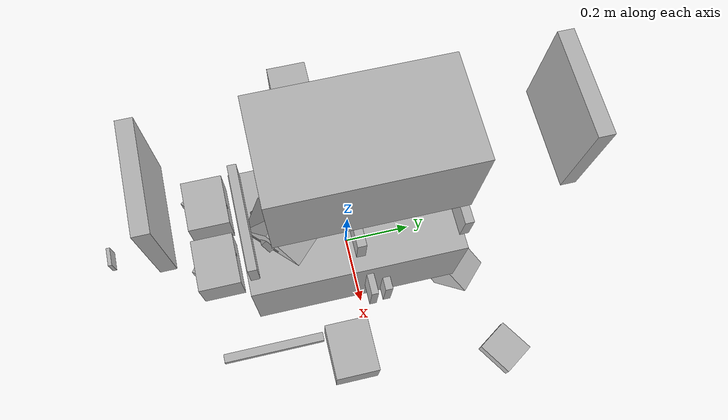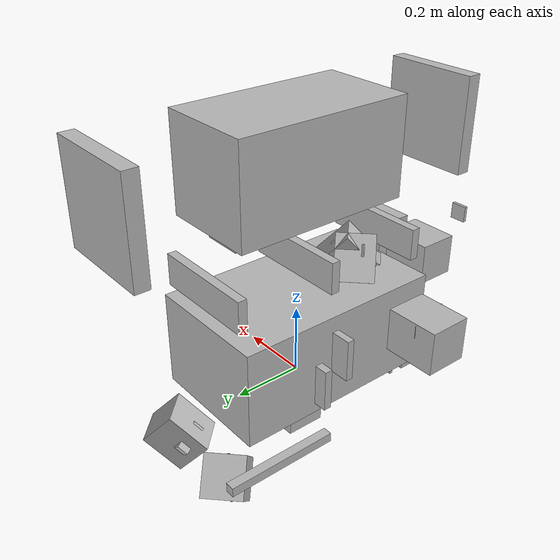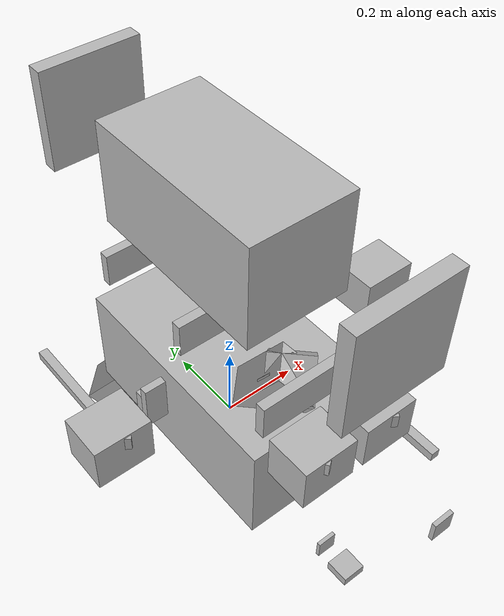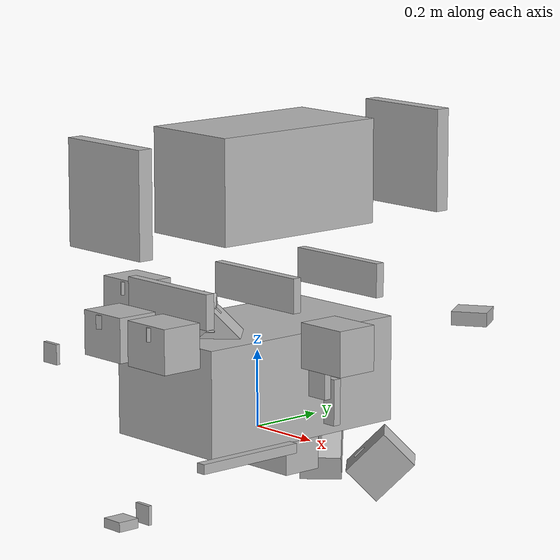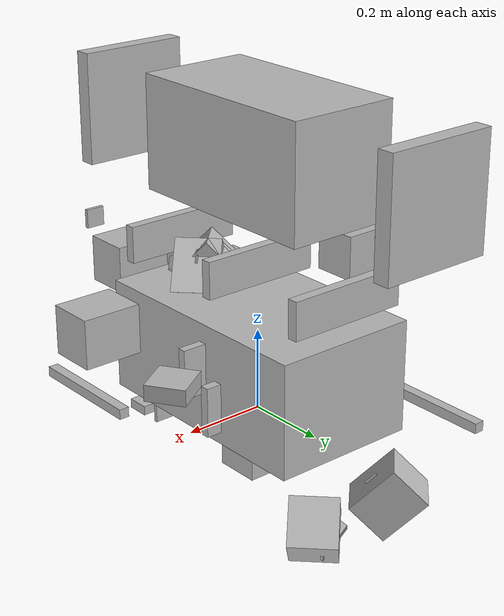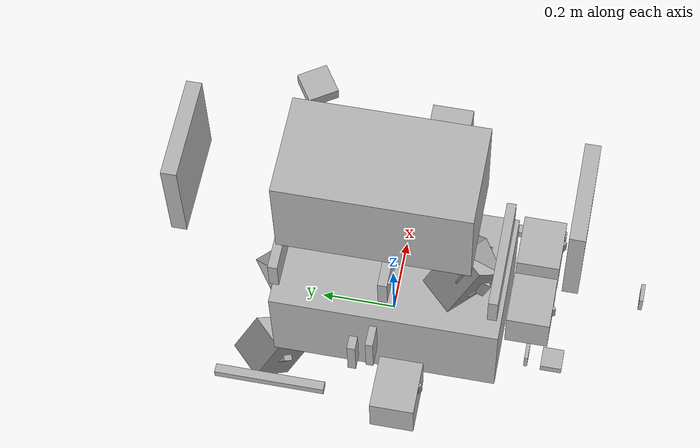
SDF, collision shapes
<sdf version="1.11">
 <model name="export_ready_assembly_v1">
  <link name="base_link">
   <inertial>
    <mass>0.0001</mass>
    <inertia><ixx>1e-09</ixx><ixy>0</ixy><ixz>0</ixz><iyy>1e-09</iyy><iyz>0</iyz><izz>1e-09</izz></inertia>
   </inertial>
  </link>
  <link name="base_link_1">
   <pose relative_to="__model__">0.0 0.0 0.012500000000000002 0.0 -0.0 1.570796326794897</pose>
   <inertial>
    <pose>1.9219946611189295e-18 3.0751914577902847e-17 1.734723475976807e-18 0.0 -0.0 -1.570796326794897</pose>
    <mass>0.19963274876480658</mass>
    <inertia>
     <ixx>3.390829679780047e-05</ixx>
     <ixy>-5.544269934278307e-19</ixy>
     <ixz>-6.139089236967274e-20</ixz>
     <iyy>0.0015141997641349501</iyy>
     <iyz>1.1510792319313615e-20</iyz>
     <izz>0.0015141997641349469</izz>
    </inertia>
   </inertial>
   <visual name="base_link_1__body1_visual">
    <geometry><mesh><scale>0.01 0.01 0.01</scale><uri>meshes/base_link_1/body1_visual.obj</uri></mesh></geometry>
   </visual>
   <collision name="base_link_1__body1_collision">
    <pose relative_to="__model__">0.0 4.884981308350689e-17 0.012500000000000002 -0.0 -1.5707963267948966 0</pose>
    <geometry><box><size>0.025 0.025 0.3</size></box></geometry>
   </collision>
  </link>
  <link name="base_structure_v3_1">
   <inertial>
    <pose>-9.268803844383131e-05 -0.004358107963915006 0.14279087376672875 0.0 -0.0 0.0</pose>
    <mass>4.766104831764232</mass>
    <inertia>
     <ixx>0.22272563316699104</ixx>
     <ixy>1.9260060529486026e-06</ixy>
     <ixz>-1.674401404712093e-06</ixz>
     <iyy>0.12062612871567982</iyy>
     <iyz>8.063758586629487e-05</iyz>
     <izz>0.28749380795747226</izz>
    </inertia>
   </inertial>
   <visual name="base_structure_v3_1__body1_visual">
    <geometry>
     <mesh><scale>0.01 0.01 0.01</scale><uri>meshes/base_structure_v3_1/body1_visual.obj</uri></mesh>
    </geometry>
   </visual>
   <collision name="base_structure_v3_1__body1_collision">
    <pose relative_to="__model__">-2.2351740014414647e-09 -0.005 0.13750000176951302 -0.0 -1.5707963267948966 0</pose>
    <geometry><box><size>0.27500000353902604 0.61 0.36000000521540604</size></box></geometry>
   </collision>
  </link>
  <link name="aft_support_1">
   <pose relative_to="__model__">-1.2172316843361841e-09 0.2875000000000002 0.012500001034329604 6.895530703326297e-09 6.123233689513694e-17 1.5707963267948966</pose>
   <inertial>
    <pose>-7.654043490575726e-19 -3.3684988808297894e-17 -1.1975023400258026e-18 6.123233647290746e-17 -6.895530703326297e-09 -1.5707963267948966</pose>
    <mass>0.18224999999999994</mass>
    <inertia>
     <ixx>2.937295320220093e-05</ixx>
     <ixy>1.841726681137266e-19</ixy>
     <ixz>9.324057541173443e-12</ixz>
     <iyy>0.001381561476601102</iyy>
     <iyz>0.0</iyz>
     <izz>0.0013815614766010988</izz>
    </inertia>
   </inertial>
   <visual name="aft_support_1__body1_visual">
    <geometry>
     <mesh><scale>0.01 0.01 0.01</scale><uri>meshes/aft_support_1/body1_visual.obj</uri></mesh>
    </geometry>
   </visual>
   <collision name="aft_support_1__body1_collision">
    <pose relative_to="__model__">-1.2948063954354438e-09 0.2875000000000002 0.0125 -0.0 -1.5707963267948966 0</pose>
    <geometry><box><size>0.025 0.025 0.3000000000172388</size></box></geometry>
   </collision>
  </link>
  <link name="aft_support_2">
   <pose relative_to="__model__">-1.2172317376268894e-09 -0.2875 0.012500001034329604 6.895530703326299e-09 -3.484460266862269e-24 1.5707963267948968</pose>
   <inertial>
    <pose>2.3930154424120435e-25 -3.368498915886532e-17 -1.4545640007087047e-18 -2.3755743563062998e-24 -6.895530703326299e-09 -1.5707963267948968</pose>
    <mass>0.18224999999999994</mass>
    <inertia>
     <ixx>2.937295320220093e-05</ixx>
     <ixy>1.0137500364916267e-19</ixy>
     <ixz>9.324057541173443e-12</ixz>
     <iyy>0.001381561476601102</iyy>
     <iyz>1.0842021724855044e-19</iyz>
     <izz>0.0013815614766011005</izz>
    </inertia>
   </inertial>
   <visual name="aft_support_2__body1_visual">
    <geometry>
     <mesh><scale>0.01 0.01 0.01</scale><uri>meshes/aft_support_2/body1_visual.obj</uri></mesh>
    </geometry>
   </visual>
   <collision name="aft_support_2__body1_collision">
    <pose relative_to="__model__">-1.294806448726149e-09 -0.2875 0.012499999999999997 -0.0 -1.5707963267948966 0</pose>
    <geometry><box><size>0.025 0.025 0.3000000000172388</size></box></geometry>
   </collision>
  </link>
  <link name="batt_hull_v1_1">
   <pose relative_to="__model__">0.0009999977648260483 0.07812500000000001 0.08500000182539201 0.0 -0.0 -1.5707963267948966</pose>
   <inertial>
    <pose>6.123220309243801e-20 2.6467820008879437e-17 0.0 0.0 -0.0 1.5707963267948966</pose>
    <mass>0.8210866559422294</mass>
    <inertia>
     <ixx>0.0025043143006237625</ixx>
     <ixy>-6.776263578034403e-20</ixy>
     <ixz>0.0</ixz>
     <iyy>0.003989112670119272</iyy>
     <iyz>0.0</iyz>
     <izz>0.003989112670119338</izz>
    </inertia>
   </inertial>
   <visual name="batt_hull_v1_1__body1_visual">
    <geometry>
     <mesh><scale>0.01 0.01 0.01</scale><uri>meshes/batt_hull_v1_1/body1_visual.obj</uri></mesh>
    </geometry>
   </visual>
   <collision name="batt_hull_v1_1__body1_collision">
    <pose relative_to="__model__">0.0009999977648260483 0.078125 0.08500000182539201 -0.0 -1.5707963267948966 0</pose>
    <geometry><box><size>0.12 0.12 0.2</size></box></geometry>
   </collision>
  </link>
  <link name="lower_mounts_v4_1">
   <pose relative_to="__model__">-0.075000002235174 0.0 0.015000001825392016 0.0 -0.0 -1.5707963267948966</pose>
   <inertial>
    <pose>-1.122951742896557e-14 6.87609628767605e-31 0.05983000486087901 0.0 -0.0 1.5707963267948966</pose>
    <mass>0.20889715202694284</mass>
    <inertia>
     <ixx>0.0014043910383185222</ixx>
     <ixy>2.1537388909222726e-22</ixy>
     <ixz>0.0</ixz>
     <iyy>0.00034258494964595036</iyy>
     <iyz>2.6515377067311625e-15</iyz>
     <izz>0.0010787257693986127</izz>
    </inertia>
   </inertial>
   <visual name="lower_mounts_v4_1__body1_visual">
    <geometry>
     <mesh><scale>0.01 0.01 0.01</scale><uri>meshes/lower_mounts_v4_1/body1_visual.obj</uri></mesh>
    </geometry>
   </visual>
   <collision name="lower_mounts_v4_1__body1_collision">
    <pose relative_to="__model__">-0.075000002235174 0.0 0.07500000182539203 -0.0 -1.5707963267948966 0</pose>
    <geometry><box><size>0.12 0.28625 0.022000000000000002</size></box></geometry>
   </collision>
  </link>
  <link name="lower_mounts_v4_2">
   <pose relative_to="__model__">0.07500000149011629 0.0 0.015000001825392016 0.0 -0.0 1.5707963267948966</pose>
   <inertial>
    <pose>-1.122951742896557e-14 -1.3877787807815144e-17 0.05983000486087901 0.0 -0.0 -1.5707963267948966</pose>
    <mass>0.20889715202694284</mass>
    <inertia>
     <ixx>0.0014043910383185222</ixx>
     <ixy>-1.2981836889172902e-19</ixy>
     <ixz>0.0</ixz>
     <iyy>0.00034258494964595036</iyy>
     <iyz>-2.6515377067311625e-15</iyz>
     <izz>0.001078725769398613</izz>
    </inertia>
   </inertial>
   <visual name="lower_mounts_v4_2__body1_visual">
    <geometry>
     <mesh><scale>0.01 0.01 0.01</scale><uri>meshes/lower_mounts_v4_2/body1_visual.obj</uri></mesh>
    </geometry>
   </visual>
   <collision name="lower_mounts_v4_2__body1_collision">
    <pose relative_to="__model__">0.0750000014901163 0.0 0.07500000182539203 -0.0 -1.5707963267948966 0</pose>
    <geometry><box><size>0.12 0.28625 0.02200000000000001</size></box></geometry>
   </collision>
  </link>
  <link name="batt_hull_2_1">
   <pose relative_to="__model__">0.0009999977648260483 -0.07812500000000003 0.08500000182539201 0.0 -0.0 -1.5707963267948966</pose>
   <inertial>
    <pose>6.123220309243801e-20 2.6441246008413177e-17 0.0 0.0 -0.0 1.5707963267948966</pose>
    <mass>0.8210866559422294</mass>
    <inertia>
     <ixx>0.0025043143006237625</ixx>
     <ixy>-9.486769009248164e-20</ixy>
     <ixz>0.0</ixz>
     <iyy>0.003989112670119272</iyy>
     <iyz>1.734723475976807e-18</iyz>
     <izz>0.00398911267011934</izz>
    </inertia>
   </inertial>
   <visual name="batt_hull_2_1__body1_visual">
    <geometry>
     <mesh><scale>0.01 0.01 0.01</scale><uri>meshes/batt_hull_2_1/body1_visual.obj</uri></mesh>
    </geometry>
   </visual>
   <collision name="batt_hull_2_1__body1_collision">
    <pose relative_to="__model__">0.0009999977648260483 -0.07812500000000004 0.08500000182539201 -0.0 -1.5707963267948966 0</pose>
    <geometry><box><size>0.12 0.12 0.2</size></box></geometry>
   </collision>
  </link>
  <link name="thruster_enclosure_v5_1">
   <pose relative_to="__model__">0.1021783004863702 -0.20407169914110088 0.075000000858279 -1.5707963267948966 -0.0 2.356194490192345</pose>
   <inertial>
    <pose>-0.00016404096371552097 -0.01689093543790808 0.010727722238094154 -1.5707963267948966 0.7853981633974484 -3.141592653589793</pose>
    <mass>0.16043165212635116</mass>
    <inertia>
     <ixx>0.000362763463563549</ixx>
     <ixy>6.570424986099797e-05</ixy>
     <ixz>-6.255743962602393e-06</ixz>
     <iyy>0.00036315916999338964</iyy>
     <iyz>-6.101982790084233e-06</iyz>
     <izz>0.00028918540189159375</izz>
    </inertia>
   </inertial>
   <visual name="thruster_enclosure_v5_1__body1_visual">
    <geometry>
     <mesh><scale>0.01 0.01 0.01</scale><uri>meshes/thruster_enclosure_v5_1/body1_visual.obj</uri></mesh>
    </geometry>
   </visual>
   <collision name="thruster_enclosure_v5_1__body1_collision">
    <pose relative_to="__model__">0.09705177645678667 -0.20919822343306332 0.07875000091112346 -0.7853981627305272 -1.5707963267948966 0</pose>
    <geometry><box><size>0.1124999998596319 0.13999999998249063 0.11450000001676784</size></box></geometry>
   </collision>
  </link>
  <link name="thruster_enclosure_v5_2">
   <pose relative_to="__model__">-0.10217830123142801 -0.20407169914110093 0.075000000974185 -1.5707963267948968 2.4789634154088394e-16 -2.356194490192345</pose>
   <inertial>
    <pose>-0.0001640409637155222 -0.016890935437908056 0.010727722238094154 -1.5707963267948968 -0.7853981633974484 3.141592653589793</pose>
    <mass>0.16043165212635116</mass>
    <inertia>
     <ixx>0.00036315916999339094</ixx>
     <ixy>-6.570424986099841e-05</ixy>
     <ixz>6.101982790084233e-06</ixz>
     <iyy>0.00036276346356354724</iyy>
     <iyz>-6.2557439626030435e-06</iyz>
     <izz>0.0002891854018915955</izz>
    </inertia>
   </inertial>
   <visual name="thruster_enclosure_v5_2__body1_visual">
    <geometry>
     <mesh><scale>0.01 0.01 0.01</scale><uri>meshes/thruster_enclosure_v5_2/body1_visual.obj</uri></mesh>
    </geometry>
   </visual>
   <collision name="thruster_enclosure_v5_2__body1_collision">
    <pose relative_to="__model__">-0.09705177718981908 -0.20919822342103792 0.07875000104354336 -0.7853981627305272 -1.5707963267948966 0</pose>
    <geometry><box><size>0.1124999998926597 0.11450000001676783 0.14000000001750937</size></box></geometry>
   </collision>
  </link>
  <link name="thruster_enclosure_v5_3">
   <pose relative_to="__model__">-0.10217830123142782 0.20407169914110093 0.07499999871727896 -1.5707963267948946 -2.2479664065167712e-15 -0.7853981633974462</pose>
   <inertial>
    <pose>-0.00016404096371550435 -0.016890935437908056 0.01072772223809412 1.5707963267948937 -0.7853981633974462 4.307600190799412e-15</pose>
    <mass>0.16043165212635116</mass>
    <inertia>
     <ixx>0.00036276346356354724</ixx>
     <ixy>6.57042498609971e-05</ixy>
     <ixz>6.255743962602393e-06</ixz>
     <iyy>0.0003631591699933892</iyy>
     <iyz>6.101982790084233e-06</iyz>
     <izz>0.00028918540189159375</izz>
    </inertia>
   </inertial>
   <visual name="thruster_enclosure_v5_3__body1_visual">
    <geometry>
     <mesh><scale>0.01 0.01 0.01</scale><uri>meshes/thruster_enclosure_v5_3/body1_visual.obj</uri></mesh>
    </geometry>
   </visual>
   <collision name="thruster_enclosure_v5_3__body1_collision">
    <pose relative_to="__model__">-0.09705177720184448 0.20919822343306355 0.07874999877012344 -0.7853981627305293 -1.5707963267948966 0</pose>
    <geometry><box><size>0.11249999985963187 0.13999999998249063 0.1145000000167678</size></box></geometry>
   </collision>
  </link>
  <link name="thruster_enclosure_v5_4">
   <pose relative_to="__model__">0.10217830048637012 0.20407169914110093 0.07499999871727905 -1.570796326794896 -1.835142521286212e-15 0.7853981633974477</pose>
   <inertial>
    <pose>-0.00016404096371555902 -0.016890935437908056 0.010727722238094116 1.5707963267948957 0.7853981633974477 1.1077763665537512e-15</pose>
    <mass>0.16043165212635116</mass>
    <inertia>
     <ixx>0.00036315916999339094</ixx>
     <ixy>-6.57042498609971e-05</ixy>
     <ixz>-6.101982790083799e-06</ixz>
     <iyy>0.0003627634635635468</iyy>
     <iyz>6.255743962602176e-06</iyz>
     <izz>0.0002891854018915955</izz>
    </inertia>
   </inertial>
   <visual name="thruster_enclosure_v5_4__body1_visual">
    <geometry>
     <mesh><scale>0.01 0.01 0.01</scale><uri>meshes/thruster_enclosure_v5_4/body1_visual.obj</uri></mesh>
    </geometry>
   </visual>
   <collision name="thruster_enclosure_v5_4__body1_collision">
    <pose relative_to="__model__">0.09705177644476119 0.20919822342103797 0.07874999878663741 -0.7853981627305268 -1.5707963267948966 0</pose>
    <geometry><box><size>0.11249999989265967 0.1145000000167678 0.14000000001750934</size></box></geometry>
   </collision>
  </link>
  <link name="main_hull_mounts_v2_1">
   <pose relative_to="__model__">-1.8652000832730663e-10 0.0 0.16000000159752886 0.0 -0.0 0.0</pose>
   <inertial>
    <pose>0.0 0.0 0.03393215424434062 0.0 -0.0 0.0</pose>
    <mass>0.6243657270662313</mass>
    <inertia>
     <ixx>0.0003796879474730411</ixx>
     <ixy>-2.592059900052845e-19</ixy>
     <ixz>5.184119841300774e-19</ixz>
     <iyy>0.006653280946691913</iyy>
     <iyz>-3.2400748750660565e-20</iyz>
     <izz>0.006338631095788273</izz>
    </inertia>
   </inertial>
   <visual name="main_hull_mounts_v2_1__body1_visual">
    <geometry>
     <mesh><scale>0.01 0.01 0.01</scale><uri>meshes/main_hull_mounts_v2_1/body1_visual.obj</uri></mesh>
    </geometry>
   </visual>
   <collision name="main_hull_mounts_v2_1__body1_collision">
    <pose relative_to="__model__">-1.8652000832730663e-10 0.0 0.20500000159752887 -0.0 -1.5707963267948966 0</pose>
    <geometry><box><size>0.09 0.025 0.3</size></box></geometry>
   </collision>
  </link>
  <link name="main_hull_mounts_v2_2">
   <pose relative_to="__model__">-1.863496549410039e-10 -0.14375 0.16000000182539204 0.0 -0.0 6.123233995736766e-17</pose>
   <inertial>
    <pose>-3.656618355476227e-27 1.1410625422285708e-26 0.033932154244340595 0.0 -0.0 -6.123233995736766e-17</pose>
    <mass>0.6243657270662313</mass>
    <inertia>
     <ixx>0.00037968794747305495</ixx>
     <ixy>-6.433527753571591e-19</ixy>
     <ixz>5.184119841300774e-19</ixz>
     <iyy>0.006653280946691924</iyy>
     <iyz>3.469446951953614e-18</iyz>
     <izz>0.006338631095788276</izz>
    </inertia>
   </inertial>
   <visual name="main_hull_mounts_v2_2__body1_visual">
    <geometry>
     <mesh><scale>0.01 0.01 0.01</scale><uri>meshes/main_hull_mounts_v2_2/body1_visual.obj</uri></mesh>
    </geometry>
   </visual>
   <collision name="main_hull_mounts_v2_2__body1_collision">
    <pose relative_to="__model__">-1.8634965570640816e-10 -0.14375 0.20500000182539202 -0.0 -1.5707963267948966 0</pose>
    <geometry><box><size>0.09 0.025 0.3</size></box></geometry>
   </collision>
  </link>
  <link name="main_hull_mounts_v2_3">
   <pose relative_to="__model__">-1.86349638708244e-10 0.14375000000000002 0.16000000182539204 -7.251365716049723e-33 -1.1842378914636296e-16 6.123233995736766e-17</pose>
   <inertial>
    <pose>2.2362970986363366e-26 1.1410623268097308e-26 0.033932154244340595 0.0 1.1842378914636296e-16 -6.123233995736766e-17</pose>
    <mass>0.6243657270662313</mass>
    <inertia>
     <ixx>0.00037968794747305495</ixx>
     <ixy>-6.433527656636363e-19</ixy>
     <ixz>-1.8726864358779919e-19</ixz>
     <iyy>0.006653280946691924</iyy>
     <iyz>0.0</iyz>
     <izz>0.006338631095788274</izz>
    </inertia>
   </inertial>
   <visual name="main_hull_mounts_v2_3__body1_visual">
    <geometry>
     <mesh><scale>0.01 0.01 0.01</scale><uri>meshes/main_hull_mounts_v2_3/body1_visual.obj</uri></mesh>
    </geometry>
   </visual>
   <collision name="main_hull_mounts_v2_3__body1_collision">
    <pose relative_to="__model__">-1.8634965570640816e-10 0.14375000000000004 0.20500000182539202 -0.0 -1.5707963267948966 0</pose>
    <geometry><box><size>0.09 0.02499999999999998 0.3</size></box></geometry>
   </collision>
  </link>
  <link name="main_hull_v2_1">
   <pose relative_to="__model__">-1.8652000832730663e-10 0.0125 0.32500000159752884 0.0 -0.0 0.0</pose>
   <inertial>
    <mass>7.1498721804886785</mass>
    <inertia>
     <ixx>0.20727181539895523</ixx>
     <ixy>2.7706846593151522e-17</ixy>
     <ixz>1.0339757656912846e-25</ixz>
     <iyy>0.11663228994421992</iyy>
     <iyz>2.0816681711721685e-17</iyz>
     <izz>0.20727181539895856</izz>
    </inertia>
   </inertial>
   <visual name="main_hull_v2_1__body1_visual">
    <geometry>
     <mesh><scale>0.01 0.01 0.01</scale><uri>meshes/main_hull_v2_1/body1_visual.obj</uri></mesh>
    </geometry>
   </visual>
   <collision name="main_hull_v2_1__body1_collision">
    <pose relative_to="__model__">-1.8652000832730663e-10 0.0125 0.32500000159752884 -0.0 -1.5707963267948966 0</pose>
    <geometry><box><size>0.27 0.5 0.27</size></box></geometry>
   </collision>
  </link>
  <link name="secondary_hull_endcaps_v1_1">
   <pose relative_to="__model__">-0.09900000223517395 -0.07812500000000004 0.08500000182539201 0.0 -0.0 -1.5707963267948966</pose>
   <inertial>
    <pose>-6.117211279491137e-18 -0.0009016393442622997 0.0 0.0 -0.0 1.5707963267948966</pose>
    <mass>0.2730829414132927</mass>
    <inertia>
     <ixx>0.00042999371348764574</ixx>
     <ixy>0.0</ixy>
     <ixz>0.0</ixz>
     <iyy>0.000223877617722636</iyy>
     <iyz>-2.168404344971009e-19</iyz>
     <izz>0.00022387761772264727</izz>
    </inertia>
   </inertial>
   <visual name="secondary_hull_endcaps_v1_1__body1_visual">
    <geometry>
     <mesh><scale>0.01 0.01 0.01</scale><uri>meshes/secondary_hull_endcaps_v1_1/body1_visual.obj</uri></mesh>
    </geometry>
   </visual>
   <collision name="secondary_hull_endcaps_v1_1__body1_collision">
    <pose relative_to="__model__">-0.09900000223517395 -0.07812500000000004 0.08500000182539201 -0.0 -1.5707963267948966 0</pose>
    <geometry><box><size>0.12 0.12 0.02</size></box></geometry>
   </collision>
  </link>
  <link name="secondary_hull_endcaps_v1_2">
   <pose relative_to="__model__">0.10099999776482604 0.078125 0.08500000182539201 0.0 1.2246467991473532e-16 1.5707963267948968</pose>
   <inertial>
    <pose>9.590445319049415e-19 -0.0009016393442622937 -4.310234689475762e-18 1.2246467991473532e-16 1.9693822555628533e-32 -1.5707963267948968</pose>
    <mass>0.2730829414132927</mass>
    <inertia>
     <ixx>0.00042999371348764574</ixx>
     <ixy>4.336808689942018e-19</ixy>
     <ixz>0.0</ixz>
     <iyy>0.000223877617722636</iyy>
     <iyz>0.0</iyz>
     <izz>0.00022387761772264727</izz>
    </inertia>
   </inertial>
   <visual name="secondary_hull_endcaps_v1_2__body1_visual">
    <geometry>
     <mesh><scale>0.01 0.01 0.01</scale><uri>meshes/secondary_hull_endcaps_v1_2/body1_visual.obj</uri></mesh>
    </geometry>
   </visual>
   <collision name="secondary_hull_endcaps_v1_2__body1_collision">
    <pose relative_to="__model__">0.10099999776482604 0.078125 0.08500000182539201 -0.0 -1.5707963267948966 0</pose>
    <geometry><box><size>0.12 0.12 0.02</size></box></geometry>
   </collision>
  </link>
  <link name="secondary_hull_endcaps_v1_3">
   <pose relative_to="__model__">-0.09900000223517395 0.078125 0.08500000182539201 0.0 -0.0 -1.5707963267948966</pose>
   <inertial>
    <pose>-6.117211279491137e-18 -0.0009016393442622902 0.0 0.0 -0.0 1.5707963267948966</pose>
    <mass>0.2730829414132927</mass>
    <inertia>
     <ixx>0.00042999371348764574</ixx>
     <ixy>0.0</ixy>
     <ixz>0.0</ixz>
     <iyy>0.000223877617722636</iyy>
     <iyz>0.0</iyz>
     <izz>0.00022387761772264727</izz>
    </inertia>
   </inertial>
   <visual name="secondary_hull_endcaps_v1_3__body1_visual">
    <geometry>
     <mesh><scale>0.01 0.01 0.01</scale><uri>meshes/secondary_hull_endcaps_v1_3/body1_visual.obj</uri></mesh>
    </geometry>
   </visual>
   <collision name="secondary_hull_endcaps_v1_3__body1_collision">
    <pose relative_to="__model__">-0.09900000223517395 0.078125 0.08500000182539201 -0.0 -1.5707963267948966 0</pose>
    <geometry><box><size>0.12 0.12 0.02</size></box></geometry>
   </collision>
  </link>
  <link name="secondary_hull_endcaps_v1_4">
   <pose relative_to="__model__">0.10099999776482604 -0.07812500000000001 0.08500000182539201 0.0 1.2246467991473532e-16 1.5707963267948968</pose>
   <inertial>
    <pose>9.590445319049415e-19 -0.0009016393442622963 4.3102346894757556e-18 1.2246467991473532e-16 1.9693822555628533e-32 -1.5707963267948968</pose>
    <mass>0.2730829414132927</mass>
    <inertia>
     <ixx>0.0004299937134876453</ixx>
     <ixy>0.0</ixy>
     <ixz>0.0</ixz>
     <iyy>0.000223877617722636</iyy>
     <iyz>2.168404344971009e-19</iyz>
     <izz>0.000223877617722649</izz>
    </inertia>
   </inertial>
   <visual name="secondary_hull_endcaps_v1_4__body1_visual">
    <geometry>
     <mesh><scale>0.01 0.01 0.01</scale><uri>meshes/secondary_hull_endcaps_v1_4/body1_visual.obj</uri></mesh>
    </geometry>
   </visual>
   <collision name="secondary_hull_endcaps_v1_4__body1_collision">
    <pose relative_to="__model__">0.10099999776482604 -0.07812500000000001 0.08500000182539201 -0.0 -1.5707963267948966 0</pose>
    <geometry><box><size>0.12 0.12 0.02</size></box></geometry>
   </collision>
  </link>
  <link name="thruster_enclosure_v5_5">
   <pose relative_to="__model__">0.23500000037252902 -0.14999999999999722 0.14000000136904406 -3.11100584993068e-30 -6.123233995736773e-17 -1.570796326794846</pose>
   <inertial>
    <pose>-0.00016404096371551034 -0.016890935437908 0.010727722238094114 6.123233995736773e-17 -7.297603015109787e-33 1.570796326794846</pose>
    <mass>0.16043165212635116</mass>
    <inertia>
     <ixx>0.00028918540189159115</ixx>
     <ixy>1.0872556777119513e-07</ixy>
     <ixz>-8.73823238687569e-06</ixz>
     <iyy>0.000297257066917472</iyy>
     <iyz>1.978532149214153e-07</iyz>
     <izz>0.00042866556663946447</izz>
    </inertia>
   </inertial>
   <visual name="thruster_enclosure_v5_5__body1_visual">
    <geometry>
     <mesh><scale>0.01 0.01 0.01</scale><uri>meshes/thruster_enclosure_v5_5/body1_visual.obj</uri></mesh>
    </geometry>
   </visual>
   <collision name="thruster_enclosure_v5_5__body1_collision">
    <pose relative_to="__model__">0.23125000037252888 -0.15000000000000013 0.14725000136904406 -0.0 -1.5707963267948966 0</pose>
    <geometry><box><size>0.11449999999999999 0.14000000000000024 0.11250000000000025</size></box></geometry>
   </collision>
  </link>
  <link name="thruster_enclosure_v5_6">
   <pose relative_to="__model__">0.23500000037252883 0.1500000000000028 0.14000000136904403 -3.109200089911257e-30 -6.123233995736772e-17 -1.570796326794846</pose>
   <inertial>
    <pose>-0.00016404096371551034 -0.016890935437908004 0.010727722238094132 6.123233995736772e-17 -5.49184299568759e-33 1.570796326794846</pose>
    <mass>0.16043165212635116</mass>
    <inertia>
     <ixx>0.000289185401891592</ixx>
     <ixy>1.0872556777032777e-07</ixy>
     <ixz>-8.738232386874822e-06</ixz>
     <iyy>0.0002972570669174685</iyy>
     <iyz>1.9785321492184899e-07</iyz>
     <izz>0.00042866556663946447</izz>
    </inertia>
   </inertial>
   <visual name="thruster_enclosure_v5_6__body1_visual">
    <geometry>
     <mesh><scale>0.01 0.01 0.01</scale><uri>meshes/thruster_enclosure_v5_6/body1_visual.obj</uri></mesh>
    </geometry>
   </visual>
   <collision name="thruster_enclosure_v5_6__body1_collision">
    <pose relative_to="__model__">0.23125000037252869 0.14999999999999986 0.14725000136904404 -0.0 -1.5707963267948966 0</pose>
    <geometry><box><size>0.11449999999999999 0.14000000000000024 0.11250000000000025</size></box></geometry>
   </collision>
  </link>
  <link name="thruster_enclosure_v5_7">
   <pose relative_to="__model__">-0.2350000048428768 -0.1500000000000028 0.14000000182539196 -3.111005849963699e-30 -6.123233995738344e-17 1.5707963267949474</pose>
   <inertial>
    <pose>-0.0001640409637155164 -0.016890935437907963 0.010727722238094104 -6.123233995738344e-17 1.2000912261718926e-33 -1.5707963267949474</pose>
    <mass>0.16043165212635116</mass>
    <inertia>
     <ixx>0.00028918540189159115</ixx>
     <ixy>1.0872556777119513e-07</ixy>
     <ixz>8.738232386874822e-06</ixz>
     <iyy>0.0002972570669174685</iyy>
     <iyz>-1.9785321492011426e-07</iyz>
     <izz>0.00042866556663946273</izz>
    </inertia>
   </inertial>
   <visual name="thruster_enclosure_v5_7__body1_visual">
    <geometry>
     <mesh><scale>0.01 0.01 0.01</scale><uri>meshes/thruster_enclosure_v5_7/body1_visual.obj</uri></mesh>
    </geometry>
   </visual>
   <collision name="thruster_enclosure_v5_7__body1_collision">
    <pose relative_to="__model__">-0.23125000484287667 -0.14999999999999988 0.14725000182539197 -0.0 -1.5707963267948966 0</pose>
    <geometry><box><size>0.11449999999999999 0.1400000000000003 0.11250000000000025</size></box></geometry>
   </collision>
  </link>
  <link name="thruster_enclosure_v5_8">
   <pose relative_to="__model__">-0.23500000484287661 0.14999999999999722 0.14000000182539188 -3.1110058499747612e-30 -6.123233995741185e-17 1.5707963267949474</pose>
   <inertial>
    <pose>-0.0001640409637155164 -0.016890935437908015 0.010727722238094114 -6.123233995741185e-17 1.200091235791106e-33 -1.5707963267949474</pose>
    <mass>0.16043165212635116</mass>
    <inertia>
     <ixx>0.00028918540189159375</ixx>
     <ixy>1.0872556777119513e-07</ixy>
     <ixz>8.738232386874822e-06</ixz>
     <iyy>0.0002972570669174668</iyy>
     <iyz>-1.9785321492228267e-07</iyz>
     <izz>0.0004286655666394662</izz>
    </inertia>
   </inertial>
   <visual name="thruster_enclosure_v5_8__body1_visual">
    <geometry>
     <mesh><scale>0.01 0.01 0.01</scale><uri>meshes/thruster_enclosure_v5_8/body1_visual.obj</uri></mesh>
    </geometry>
   </visual>
   <collision name="thruster_enclosure_v5_8__body1_collision">
    <pose relative_to="__model__">-0.23125000484287647 0.15000000000000013 0.14725000182539189 -0.0 -1.5707963267948966 0</pose>
    <geometry><box><size>0.11449999999999999 0.1400000000000003 0.11250000000000025</size></box></geometry>
   </collision>
  </link>
  <link name="forward_cam_1">
   <pose relative_to="__model__">-2.2351740014414647e-09 -0.30499999999999977 0.14749999999999994 1.5707963267948966 -0.0 0.0</pose>
   <inertial>
    <pose>4.413604941534688e-14 8.514692049579576e-18 0.009227474884115247 -1.5707963267948966 -0.0 0.0</pose>
    <mass>0.033283293915246544</mass>
    <inertia>
     <ixx>9.072968292908254e-06</ixx>
     <ixy>-6.2086251095301885e-18</ixy>
     <ixz>-1.2050804987785792e-20</ixz>
     <iyy>1.4735325857890354e-05</iyy>
     <iyz>0.0</iyz>
     <izz>9.072968286104235e-06</izz>
    </inertia>
   </inertial>
   <visual name="forward_cam_1__body1_visual">
    <geometry>
     <mesh><scale>0.01 0.01 0.01</scale><uri>meshes/forward_cam_1/body1_visual.obj</uri></mesh>
    </geometry>
   </visual>
   <collision name="forward_cam_1__body1_collision">
    <pose relative_to="__model__">-2.2351740014414647e-09 -0.3174999999999998 0.14749999999999994 -0.0 -1.5707963267948966 0</pose>
    <geometry><box><size>0.059999999999999984 0.025 0.06</size></box></geometry>
   </collision>
  </link>
  <link name="camera_cover_v1_1">
   <pose relative_to="__model__">-2.2351740014414647e-09 -0.32999999999999985 0.14749999999999994 0.0 -0.0 0.0</pose>
   <inertial>
    <pose>-4.413126854797998e-18 -0.0005487804878048785 2.7755575615628914e-17 0.0 -0.0 0.0</pose>
    <mass>0.018354755078598368</mass>
    <inertia>
     <ixx>2.6124497970536967e-06</ixx>
     <ixy>-3.605602741936221e-22</ixy>
     <ixz>-3.240074537305879e-21</ixz>
     <iyy>4.93004244641606e-06</iyy>
     <iyz>-2.168404344971009e-19</iyz>
     <izz>2.6124497970536967e-06</izz>
    </inertia>
   </inertial>
   <visual name="camera_cover_v1_1__body1_visual">
    <geometry>
     <mesh><scale>0.01 0.01 0.01</scale><uri>meshes/camera_cover_v1_1/body1_visual.obj</uri></mesh>
    </geometry>
   </visual>
   <collision name="camera_cover_v1_1__body1_collision">
    <pose relative_to="__model__">-2.2351740014414647e-09 -0.32999999999999985 0.14749999999999994 -0.0 -1.5707963267948966 0</pose>
    <geometry><box><size>0.04999999999999998 0.01 0.05</size></box></geometry>
   </collision>
  </link>
  <link name="bottom_cam_1">
   <pose relative_to="__model__">-2.2351740014414647e-09 -0.2699999999999998 0.13500000182539199 3.141592653589793 -0.0 0.0</pose>
   <inertial>
    <pose>4.413604941534688e-14 1.540269225393088e-17 0.009227474884115244 -3.141592653589793 -0.0 0.0</pose>
    <mass>0.033283293915246544</mass>
    <inertia>
     <ixx>9.072968292907387e-06</ixx>
     <ixy>1.2050803372198658e-20</ixy>
     <ixz>-6.208625104683427e-18</ixz>
     <iyy>9.072968286104235e-06</iyy>
     <iyz>2.168404344971009e-19</iyz>
     <izz>1.4735325857889812e-05</izz>
    </inertia>
   </inertial>
   <visual name="bottom_cam_1__body1_visual">
    <geometry><mesh><scale>0.01 0.01 0.01</scale><uri>meshes/bottom_cam_1/body1_visual.obj</uri></mesh></geometry>
   </visual>
   <collision name="bottom_cam_1__body1_collision">
    <pose relative_to="__model__">-2.2351740014414647e-09 -0.2699999999999998 0.122500001825392 -0.0 -1.5707963267948966 0</pose>
    <geometry><box><size>0.025 0.06 0.06</size></box></geometry>
   </collision>
  </link>
  <link name="camera_cover_v1_2">
   <pose relative_to="__model__">-2.2351740014414647e-09 -0.2699999999999998 0.11000000182539205 1.5707963267948966 -0.0 0.0</pose>
   <inertial>
    <pose>-4.413126854797998e-18 -0.0005487804878048811 6.701954393692231e-18 -1.5707963267948966 -0.0 0.0</pose>
    <mass>0.018354755078598368</mass>
    <inertia>
     <ixx>2.612449797053263e-06</ixx>
     <ixy>3.240072921718745e-21</ixy>
     <ixz>-3.6055623522578735e-22</ixz>
     <iyy>2.6124497970536154e-06</iyy>
     <iyz>0.0</iyz>
     <izz>4.930042446416169e-06</izz>
    </inertia>
   </inertial>
   <visual name="camera_cover_v1_2__body1_visual">
    <geometry>
     <mesh><scale>0.01 0.01 0.01</scale><uri>meshes/camera_cover_v1_2/body1_visual.obj</uri></mesh>
    </geometry>
   </visual>
   <collision name="camera_cover_v1_2__body1_collision">
    <pose relative_to="__model__">-2.2351740014414647e-09 -0.2699999999999998 0.11000000182539205 -0.0 -1.5707963267948966 0</pose>
    <geometry><box><size>0.01 0.05 0.05</size></box></geometry>
   </collision>
  </link>
  <link name="aft_enclosure_v2_1">
   <pose relative_to="__model__">-1.8652000832730663e-10 0.2625 0.32500000159752884 0.0 -0.0 0.0</pose>
   <inertial>
    <pose>0.0 0.0011724137931033995 0.0 0.0 -0.0 0.0</pose>
    <mass>2.921092119215959</mass>
    <inertia>
     <ixx>0.012461787389313028</ixx>
     <ixy>1.0368239553354578e-18</ixy>
     <ixz>2.5849394142282115e-26</ixz>
     <iyy>0.02415264727847899</iyy>
     <iyz>0.0</iyz>
     <izz>0.012461787389312418</izz>
    </inertia>
   </inertial>
   <visual name="aft_enclosure_v2_1__body1_visual">
    <geometry>
     <mesh><scale>0.01 0.01 0.01</scale><uri>meshes/aft_enclosure_v2_1/body1_visual.obj</uri></mesh>
    </geometry>
   </visual>
   <collision name="aft_enclosure_v2_1__body1_collision">
    <pose relative_to="__model__">-1.8652000832730663e-10 0.2625 0.32500000159752884 -0.0 -1.5707963267948966 0</pose>
    <geometry><box><size>0.27 0.04 0.27</size></box></geometry>
   </collision>
  </link>
  <link name="front_enclosure_updated_v1_1">
   <pose relative_to="__model__">-1.8652000832730663e-10 -0.2375 0.32500000159752884 0.0 -0.0 0.0</pose>
   <inertial>
    <pose>-4.920699519757378e-17 -0.0006373937677053854 1.1102230246251565e-16 0.0 -0.0 0.0</pose>
    <mass>1.0535330963813365</mass>
    <inertia>
     <ixx>0.007243179075345912</ixx>
     <ixy>3.304324822033655e-20</ixy>
     <ixz>0.0</ixz>
     <iyy>0.014201178462267053</iyy>
     <iyz>-1.3877787807814457e-17</iyz>
     <izz>0.007243179075345552</izz>
    </inertia>
   </inertial>
   <visual name="front_enclosure_updated_v1_1__body1_visual">
    <geometry>
     <mesh><scale>0.01 0.01 0.01</scale><uri>meshes/front_enclosure_updated_v1_1/body1_visual.obj</uri></mesh>
    </geometry>
   </visual>
   <collision name="front_enclosure_updated_v1_1__body1_collision">
    <pose relative_to="__model__">-1.8652000832730663e-10 -0.2375 0.32500000159752884 -0.0 -1.5707963267948966 0</pose>
    <geometry><box><size>0.27 0.039999999999999966 0.27</size></box></geometry>
   </collision>
  </link>
  <link name="front_view_enclosure_v2_1">
   <pose relative_to="__model__">-1.8652000832730663e-10 -0.2375000000000002 0.32500000159752884 3.141592653589793 -0.0 -8.104628079763647e-14</pose>
   <inertial>
    <pose>1.8337365304116824e-17 0.051432600950118715 -2.0127112738969562e-17 -3.141592653589793 9.925306836162309e-30 -8.104628079763647e-14</pose>
    <mass>1.1804298776414623</mass>
    <inertia>
     <ixx>0.0052190145120671605</ixx>
     <ixy>2.5109644205662697e-16</ixy>
     <ixz>-5.1950337527756785e-18</ixz>
     <iyy>0.008341620352523046</iyy>
     <iyz>4.163336342344337e-17</iyz>
     <izz>0.005219014512067119</izz>
    </inertia>
   </inertial>
   <visual name="front_view_enclosure_v2_1__body1_visual">
    <geometry>
     <mesh><scale>0.01 0.01 0.01</scale><uri>meshes/front_view_enclosure_v2_1/body1_visual.obj</uri></mesh>
    </geometry>
   </visual>
   <collision name="front_view_enclosure_v2_1__body1_collision">
    <pose relative_to="__model__">-1.8652000832730663e-10 -0.2925000000000047 0.32500000159752884 -0.0 -1.5707963267948966 0</pose>
    <geometry><box><size>0.22 0.10999999999999108 0.22</size></box></geometry>
   </collision>
  </link>
  <link name="cw_p_v2_1">
   <pose relative_to="__model__">0.09157169876857203 -0.21467830085889897 0.07500000085827901 -1.5707963267948968 -0.0036905099172714916 2.3561944901923453</pose>
   <inertial>
    <pose>6.0464328856257854e-15 1.837494999906708e-14 0.005564864088639548 -1.5707963267948968 0.785398163397448 -3.137902143672522</pose>
    <mass>0.010685972005449422</mass>
    <inertia>
     <ixx>4.709701546997129e-06</ixx>
     <ixy>1.286947626245649e-06</ixy>
     <ixz>3.447014294008857e-12</ixz>
     <iyy>4.7097015469984844e-06</iyy>
     <iyz>-3.447013047176359e-12</iyz>
     <izz>3.4241492437447766e-06</izz>
    </inertia>
   </inertial>
   <visual name="cw_p_v2_1__body1_visual">
    <geometry><mesh><scale>0.01 0.01 0.01</scale><uri>meshes/cw_p_v2_1/body1_visual.obj</uri></mesh></geometry>
   </visual>
   <collision name="cw_p_v2_1__body1_collision">
    <pose relative_to="__model__">0.08273286325385207 -0.2235171347637304 0.07500001012671852 1.5707981283238022 -0.990240530315956 -0.7853967143316036</pose>
    <geometry><box><size>0.08598639600819062 0.09000994401204532 0.03500000045370996</size></box></geometry>
   </collision>
  </link>
  <link name="cw_p_v2_2">
   <pose relative_to="__model__">-0.09157169951362987 -0.21467830085889922 0.07500000097418501 -1.5707963267948961 0.007641147249813084 -2.3561944901923457</pose>
   <inertial>
    <pose>6.0506070639898546e-15 1.8335810300640354e-14 0.005564864088639512 -1.570796326794896 -0.7853981633974475 3.1339515063399794</pose>
    <mass>0.010685972005449422</mass>
    <inertia>
     <ixx>4.709701581343787e-06</ixx>
     <ixy>-1.2869475919001841e-06</ixy>
     <ixz>-7.733207913547709e-12</ixz>
     <iyy>4.709701581342486e-06</iyy>
     <iyz>-7.733206707372792e-12</iyz>
     <izz>3.4241491750539553e-06</izz>
    </inertia>
   </inertial>
   <visual name="cw_p_v2_2__body1_visual">
    <geometry><mesh><scale>0.01 0.01 0.01</scale><uri>meshes/cw_p_v2_2/body1_visual.obj</uri></mesh></geometry>
   </visual>
   <collision name="cw_p_v2_2__body1_collision">
    <pose relative_to="__model__">-0.08273286568301039 -0.22351713644783114 0.07500001022913018 -3.141590821595922 -1.0015721874830286 0.7853996380314898</pose>
    <geometry><box><size>0.08598639600819061 0.03500000045370992 0.09000994401204533</size></box></geometry>
   </collision>
  </link>
  <link name="cw_p_v2_3">
   <pose relative_to="__model__">-0.23500000484287686 -0.15000000000000277 0.15500000182539173 -1.2671078290112497e-29 -6.123233995736765e-17 1.5707963267949474</pose>
   <inertial>
    <pose>6.060590792048137e-15 1.833169951581381e-14 0.005564864088639469 -6.123233995736765e-17 9.561272531375771e-30 -1.5707963267949474</pose>
    <mass>0.010685972005449422</mass>
    <inertia>
     <ixx>3.424149260721431e-06</ixx>
     <ixy>2.747258258557761e-13</ixy>
     <ixz>-8.131516293641283e-19</ixz>
     <iyy>3.4227539037755576e-06</iyy>
     <iyz>-7.047314121155779e-19</iyz>
     <izz>5.996649173243456e-06</izz>
    </inertia>
   </inertial>
   <visual name="cw_p_v2_3__body1_visual">
    <geometry><mesh><scale>0.01 0.01 0.01</scale><uri>meshes/cw_p_v2_3/body1_visual.obj</uri></mesh></geometry>
   </visual>
   <collision name="cw_p_v2_3__body1_collision">
    <pose relative_to="__model__">-0.23500000568646917 -0.15000001436118363 0.16749999825669032 2.147661613356519 -1.5707948695203824 -1.5707963267948966</pose>
    <geometry><box><size>0.035000007435347 0.09000994401199444 0.08598639600819061</size></box></geometry>
   </collision>
  </link>
  <link name="cw_p_v2_4">
   <pose relative_to="__model__">0.23500000037252883 0.1500000000000027 0.15500000136904402 -6.123233995735493e-17 3.1029013821918856e-30 5.067422516193637e-14</pose>
   <inertial>
    <pose>6.046821539816305e-15 1.8390813877906896e-14 0.005564864088639469 6.123233995735493e-17 -6.484508643663091e-43 -5.067422516193637e-14</pose>
    <mass>0.010685972005449422</mass>
    <inertia>
     <ixx>3.422753903775449e-06</ixx>
     <ixy>-2.747258800658847e-13</ixy>
     <ixz>-7.047314121155779e-19</ixz>
     <iyy>3.424149260721648e-06</iyy>
     <iyz>8.673617379884035e-19</iyz>
     <izz>5.996649173243239e-06</izz>
    </inertia>
   </inertial>
   <visual name="cw_p_v2_4__body1_visual">
    <geometry><mesh><scale>0.01 0.01 0.01</scale><uri>meshes/cw_p_v2_4/body1_visual.obj</uri></mesh></geometry>
   </visual>
   <collision name="cw_p_v2_4__body1_collision">
    <pose relative_to="__model__">0.23500000092154594 0.14999999114156537 0.16750000144354146 0.5768652865607261 -1.570795378607887 0</pose>
    <geometry><box><size>0.035000000148995875 0.0859863960081906 0.09000994401204894</size></box></geometry>
   </collision>
  </link>
  <link name="ccw_p_v2_1">
   <pose relative_to="__model__">-0.23500000484287661 0.14999999999999727 0.15500000182539206 4.613983487600578e-24 2.7183456743048246e-16 1.5707963267949474</pose>
   <inertial>
    <pose>9.198312747277373e-11 -3.8965094181248314e-11 0.005578234369550863 2.7183456743048246e-16 -4.613969681943244e-24 -1.5707963267949474</pose>
    <mass>0.010580885311567742</mass>
    <inertia>
     <ixx>3.3400134023879287e-06</ixx>
     <ixy>-6.31122758221192e-13</ixy>
     <ixz>1.2569155785624453e-15</ixz>
     <iyy>3.3404678337696676e-06</iyy>
     <iyz>1.721713049906981e-16</iyz>
     <izz>5.82980226162069e-06</izz>
    </inertia>
   </inertial>
   <visual name="ccw_p_v2_1__body1_visual">
    <geometry><mesh><scale>0.01 0.01 0.01</scale><uri>meshes/ccw_p_v2_1/body1_visual.obj</uri></mesh></geometry>
   </visual>
   <collision name="ccw_p_v2_1__body1_collision">
    <pose relative_to="__model__">-0.23500000484017286 0.14999999995135124 0.16750000188156894 -0.599180557771797 -1.5707963267948966 0</pose>
    <geometry><box><size>0.03500000018566947 0.09000993675289648 0.08545049084567377</size></box></geometry>
   </collision>
  </link>
  <link name="ccw_p_v2_2">
   <pose relative_to="__model__">0.09157169876857182 0.21467830085889938 0.07499999871727903 -1.570796326794896 -1.8351425212862543e-15 0.7853981633974464</pose>
   <inertial>
    <pose>9.198312410203844e-11 -3.8965091675300816e-11 0.005578234369550851 1.5707963267948957 0.7853981633974464 1.1077763665537956e-15</pose>
    <mass>0.010580885311567742</mass>
    <inertia>
     <ixx>4.585135047522845e-06</ixx>
     <ixy>-1.2446672139254569e-06</ixy>
     <ixz>-4.4716000921572047e-13</ixz>
     <iyy>4.5851350478672145e-06</iyy>
     <iyz>-4.453823919912947e-13</iyz>
     <izz>3.3400134023879287e-06</izz>
    </inertia>
   </inertial>
   <visual name="ccw_p_v2_2__body1_visual">
    <geometry><mesh><scale>0.01 0.01 0.01</scale><uri>meshes/ccw_p_v2_2/body1_visual.obj</uri></mesh></geometry>
   </visual>
   <collision name="ccw_p_v2_2__body1_collision">
    <pose relative_to="__model__">0.08273286389885706 0.22351713555551173 0.07499999861198423 -1.5707963058354448 -0.9716157690231523 0.785398193669267</pose>
    <geometry><box><size>0.0854504908456738 0.09000993675289648 0.03500000024617339</size></box></geometry>
   </collision>
  </link>
  <link name="ccw_p_v2_3">
   <pose relative_to="__model__">0.2350000003725289 -0.1499999999999972 0.15500000136904402 4.6139834876005796e-24 2.71834567430533e-16 -1.570796326794846</pose>
   <inertial>
    <pose>9.19831040712644e-11 -3.8965051488683935e-11 0.005578234369550863 -2.71834567430533e-16 4.613969709012511e-24 1.570796326794846</pose>
    <mass>0.010580885311567742</mass>
    <inertia>
     <ixx>3.3400134023881456e-06</ixx>
     <ixy>-6.31122758221192e-13</ixy>
     <ixz>-1.2569697886710696e-15</ixz>
     <iyy>3.340467833769776e-06</iyy>
     <iyz>-1.7211709488207383e-16</iyz>
     <izz>5.82980226162069e-06</izz>
    </inertia>
   </inertial>
   <visual name="ccw_p_v2_3__body1_visual">
    <geometry><mesh><scale>0.01 0.01 0.01</scale><uri>meshes/ccw_p_v2_3/body1_visual.obj</uri></mesh></geometry>
   </visual>
   <collision name="ccw_p_v2_3__body1_collision">
    <pose relative_to="__model__">0.2350000003698252 -0.1499999999513512 0.1675000014252209 -0.5991805577717968 -1.5707963267948966 0</pose>
    <geometry><box><size>0.03500000018566949 0.09000993675289642 0.08545049084567383</size></box></geometry>
   </collision>
  </link>
  <link name="ccw_p_v2_4">
   <pose relative_to="__model__">-0.10571383513736066 0.20053616523516823 0.07499999871727896 -1.5707963267948946 -2.2479664065167665e-15 -0.7853981633974474</pose>
   <inertial>
    <pose>9.198311577400238e-11 -3.8965050385900294e-11 0.005578234369550839 1.5707963267948937 -0.7853981633974474 4.307600190799412e-15</pose>
    <mass>0.010580885311567742</mass>
    <inertia>
     <ixx>4.585135047867187e-06</ixx>
     <ixy>1.244667213925511e-06</ixy>
     <ixz>-4.453823648862404e-13</ixz>
     <iyy>4.585135047523062e-06</iyy>
     <iyz>4.471599414530847e-13</iyz>
     <izz>3.340013402388037e-06</izz>
    </inertia>
   </inertial>
   <visual name="ccw_p_v2_4__body1_visual">
    <geometry><mesh><scale>0.01 0.01 0.01</scale><uri>meshes/ccw_p_v2_4/body1_visual.obj</uri></mesh></geometry>
   </visual>
   <collision name="ccw_p_v2_4__body1_collision">
    <pose relative_to="__model__">-0.09687500044074845 0.20937500010488308 0.07499999861198417 -3.1415926326303434 -0.9716157690231526 -0.7853981331256287</pose>
    <geometry><box><size>0.08545049084567377 0.035000000246173425 0.09000993675289644</size></box></geometry>
   </collision>
  </link>
  <joint name="rigid_1" type="fixed"><parent>base_link_1</parent><child>base_structure_v3_1</child></joint>
  <joint name="rigid_2" type="fixed">
   <pose relative_to="__model__">0.0125 -0.15 -0.0125 0.0 -0.0 0.0</pose>
   <parent>base_structure_v3_1</parent>
   <child>aft_support_1</child>
  </joint>
  <joint name="rigid_3" type="fixed">
   <pose relative_to="__model__">0.14999999878276843 -0.3 0.012499999999999997 0.0 -0.0 0.0</pose>
   <parent>base_structure_v3_1</parent>
   <child>aft_support_2</child>
  </joint>
  <joint name="rigid_4" type="fixed">
   <pose relative_to="__model__">-0.075000002235174 0.0 0.130000001825392 0.0 -0.0 0.0</pose>
   <parent>base_structure_v3_1</parent>
   <child>lower_mounts_v4_1</child>
  </joint>
  <joint name="rigid_5" type="fixed">
   <pose relative_to="__model__">0.07500000149011629 0.0 0.130000001825392 0.0 -0.0 0.0</pose>
   <parent>base_structure_v3_1</parent>
   <child>lower_mounts_v4_2</child>
  </joint>
  <joint name="rigid_6" type="fixed">
   <pose relative_to="__model__">0.09687499962747108 -0.209375 0.130000000858279 0.0 -0.0 0.0</pose>
   <parent>base_structure_v3_1</parent>
   <child>thruster_enclosure_v5_1</child>
  </joint>
  <joint name="rigid_7" type="fixed">
   <pose relative_to="__model__">-0.09687500037252895 -0.20937500000000006 0.130000000974185 0.0 -0.0 0.0</pose>
   <parent>base_structure_v3_1</parent>
   <child>thruster_enclosure_v5_2</child>
  </joint>
  <joint name="rigid_10" type="fixed">
   <pose relative_to="__model__">0.0009999977648260483 -0.07812500000000003 0.08500000182539201 0.0 -0.0 0.0</pose>
   <parent>lower_mounts_v4_1</parent>
   <child>batt_hull_2_1</child>
  </joint>
  <joint name="rigid_11" type="fixed">
   <pose relative_to="__model__">0.0009999977648260483 0.07812500000000001 0.08500000182539201 0.0 -0.0 0.0</pose>
   <parent>lower_mounts_v4_1</parent>
   <child>batt_hull_v1_1</child>
  </joint>
  <joint name="rigid_12" type="fixed">
   <pose relative_to="__model__">0.09687499962747104 0.20937499999999998 0.12999999871727896 0.0 -0.0 0.0</pose>
   <parent>base_structure_v3_1</parent>
   <child>thruster_enclosure_v5_4</child>
  </joint>
  <joint name="rigid_13" type="fixed">
   <pose relative_to="__model__">-0.09687500037252893 0.20937500000000003 0.12999999871727894 0.0 -0.0 0.0</pose>
   <parent>base_structure_v3_1</parent>
   <child>thruster_enclosure_v5_3</child>
  </joint>
  <joint name="rigid_14" type="fixed">
   <pose relative_to="__model__">-1.8652000832730663e-10 -0.0125 0.16000000159752886 0.0 -0.0 0.0</pose>
   <parent>base_structure_v3_1</parent>
   <child>main_hull_mounts_v2_1</child>
  </joint>
  <joint name="rigid_15" type="fixed">
   <pose relative_to="__model__">0.14999999981365034 -0.13125 0.16000000182539204 0.0 -0.0 0.0</pose>
   <parent>base_structure_v3_1</parent>
   <child>main_hull_mounts_v2_2</child>
  </joint>
  <joint name="rigid_16" type="fixed">
   <pose relative_to="__model__">0.14999999981365034 0.13125000000000003 0.16000000182539204 0.0 -0.0 0.0</pose>
   <parent>base_structure_v3_1</parent>
   <child>main_hull_mounts_v2_3</child>
  </joint>
  <joint name="rigid_17" type="fixed">
   <pose relative_to="__model__">-1.8652000832730663e-10 0.2625 0.32500000159752884 0.0 -0.0 0.0</pose>
   <parent>main_hull_mounts_v2_1</parent>
   <child>main_hull_v2_1</child>
  </joint>
  <joint name="rigid_18" type="fixed">
   <pose relative_to="__model__">0.10099999776482604 -0.07812500000000001 0.08500000182539201 0.0 -0.0 0.0</pose>
   <parent>batt_hull_2_1</parent>
   <child>secondary_hull_endcaps_v1_4</child>
  </joint>
  <joint name="rigid_19" type="fixed">
   <pose relative_to="__model__">0.10099999776482604 0.078125 0.08500000182539201 0.0 -0.0 0.0</pose>
   <parent>batt_hull_v1_1</parent>
   <child>secondary_hull_endcaps_v1_2</child>
  </joint>
  <joint name="rigid_20" type="fixed">
   <pose relative_to="__model__">-0.09900000223517395 0.078125 0.08500000182539201 0.0 -0.0 0.0</pose>
   <parent>batt_hull_v1_1</parent>
   <child>secondary_hull_endcaps_v1_3</child>
  </joint>
  <joint name="rigid_21" type="fixed">
   <pose relative_to="__model__">-0.09900000223517395 -0.07812500000000004 0.08500000182539201 0.0 -0.0 0.0</pose>
   <parent>batt_hull_2_1</parent>
   <child>secondary_hull_endcaps_v1_1</child>
  </joint>
  <joint name="rigid_22" type="fixed">
   <pose relative_to="__model__">0.18000000037252925 -0.15 0.14750000136904404 0.0 -0.0 0.0</pose>
   <parent>base_structure_v3_1</parent>
   <child>thruster_enclosure_v5_5</child>
  </joint>
  <joint name="rigid_23" type="fixed">
   <pose relative_to="__model__">0.1800000003725291 0.15 0.14750000136904404 0.0 -0.0 0.0</pose>
   <parent>base_structure_v3_1</parent>
   <child>thruster_enclosure_v5_6</child>
  </joint>
  <joint name="rigid_24" type="fixed">
   <pose relative_to="__model__">-0.1800000048428771 -0.15000000000000002 0.14750000182539194 0.0 -0.0 0.0</pose>
   <parent>base_structure_v3_1</parent>
   <child>thruster_enclosure_v5_7</child>
  </joint>
  <joint name="rigid_25" type="fixed">
   <pose relative_to="__model__">-0.18000000484287682 0.15000000000000002 0.14750000182539189 0.0 -0.0 0.0</pose>
   <parent>base_structure_v3_1</parent>
   <child>thruster_enclosure_v5_8</child>
  </joint>
  <joint name="rigid_26" type="fixed">
   <pose relative_to="__model__">-2.2351740014414647e-09 -0.3099999999999998 0.14749999999999994 0.0 -0.0 0.0</pose>
   <parent>base_structure_v3_1</parent>
   <child>forward_cam_1</child>
  </joint>
  <joint name="rigid_27" type="fixed">
   <pose relative_to="__model__">-2.2351740014414647e-09 -0.32999999999999985 0.14749999999999994 0.0 -0.0 0.0</pose>
   <parent>forward_cam_1</parent>
   <child>camera_cover_v1_1</child>
  </joint>
  <joint name="rigid_28" type="fixed">
   <pose relative_to="__model__">-2.2351740014414647e-09 -0.2699999999999998 0.13000000182539204 0.0 -0.0 0.0</pose>
   <parent>base_structure_v3_1</parent>
   <child>bottom_cam_1</child>
  </joint>
  <joint name="rigid_29" type="fixed">
   <pose relative_to="__model__">-2.2351740014414647e-09 -0.2699999999999998 0.11000000182539205 0.0 -0.0 0.0</pose>
   <parent>bottom_cam_1</parent>
   <child>camera_cover_v1_2</child>
  </joint>
  <joint name="rigid_38" type="fixed">
   <pose relative_to="__model__">-1.8652000832730663e-10 0.2625 0.32500000159752884 0.0 -0.0 0.0</pose>
   <parent>main_hull_v2_1</parent>
   <child>aft_enclosure_v2_1</child>
  </joint>
  <joint name="rigid_39" type="fixed">
   <pose relative_to="__model__">-1.8652000832730663e-10 -0.2375 0.32500000159752884 0.0 -0.0 0.0</pose>
   <parent>main_hull_v2_1</parent>
   <child>front_enclosure_updated_v1_1</child>
  </joint>
  <joint name="rigid_40" type="fixed">
   <pose relative_to="__model__">-1.8652000832730663e-10 -0.23750000000000018 0.32500000159752884 0.0 -0.0 0.0</pose>
   <parent>front_enclosure_updated_v1_1</parent>
   <child>front_view_enclosure_v2_1</child>
  </joint>
  <joint name="forward_port" type="revolute">
   <pose relative_to="__model__">0.09157169876857203 -0.21467830085889897 0.07500000085827903 0.0 -0.0 0.0</pose>
   <parent>thruster_enclosure_v5_1</parent>
   <child>cw_p_v2_1</child>
   <axis>
    <xyz expressed_in="__model__">-0.7071067811865476 -0.7071067811865475 0.0</xyz>
    <limit>
     <lower>-1.79769e+308</lower>
     <upper>1.79769e+308</upper>
     <effort>100</effort>
     <velocity>5.0</velocity>
    </limit>
   </axis>
  </joint>
  <joint name="forward_sb" type="revolute">
   <pose relative_to="__model__">-0.09157169951362984 -0.2146783008588992 0.07500000097418501 0.0 -0.0 0.0</pose>
   <parent>thruster_enclosure_v5_2</parent>
   <child>cw_p_v2_2</child>
   <axis>
    <xyz expressed_in="__model__">0.7071067811865474 -0.7071067811865477 -2.556372164979342e-16</xyz>
    <limit>
     <lower>-1.79769e+308</lower>
     <upper>1.79769e+308</upper>
     <effort>100</effort>
     <velocity>5.0</velocity>
    </limit>
   </axis>
  </joint>
  <joint name="heave_aft_port" type="revolute">
   <pose relative_to="__model__">0.23500000037252883 0.1500000000000027 0.15500000136904402 0.0 -0.0 0.0</pose>
   <parent>thruster_enclosure_v5_6</parent>
   <child>cw_p_v2_4</child>
   <axis>
    <xyz expressed_in="__model__">0.0 6.123233995736756e-17 0.9999999999999973</xyz>
    <limit>
     <lower>-1.79769e+308</lower>
     <upper>1.79769e+308</upper>
     <effort>100</effort>
     <velocity>5.0</velocity>
    </limit>
   </axis>
  </joint>
  <joint name="heave_forward_sb" type="revolute">
   <pose relative_to="__model__">-0.23500000484287686 -0.15000000000000274 0.15500000182539173 0.0 -0.0 0.0</pose>
   <parent>thruster_enclosure_v5_7</parent>
   <child>cw_p_v2_3</child>
   <axis>
    <xyz expressed_in="__model__">-2.208810534618833e-29 -6.123233995736751e-17 0.9999999999999976</xyz>
    <limit>
     <lower>-1.79769e+308</lower>
     <upper>1.79769e+308</upper>
     <effort>100</effort>
     <velocity>5.0</velocity>
    </limit>
   </axis>
  </joint>
  <joint name="aft_port" type="revolute">
   <pose relative_to="__model__">0.0915716987685718 0.21467830085889936 0.07499999871727903 0.0 -0.0 0.0</pose>
   <parent>thruster_enclosure_v5_4</parent>
   <child>ccw_p_v2_2</child>
   <axis>
    <xyz expressed_in="__model__">-0.7071067811865454 0.7071067811865477 8.047287542164633e-16</xyz>
    <limit>
     <lower>-1.79769e+308</lower>
     <upper>1.79769e+308</upper>
     <effort>100</effort>
     <velocity>5.0</velocity>
    </limit>
   </axis>
  </joint>
  <joint name="aft_sb" type="revolute">
   <pose relative_to="__model__">-0.10571383513736064 0.20053616523516818 0.07499999871727896 0.0 -0.0 0.0</pose>
   <parent>thruster_enclosure_v5_3</parent>
   <child>ccw_p_v2_4</child>
   <axis>
    <xyz expressed_in="__model__">-0.7071067811865452 -0.7071067811865469 -2.0489350643965765e-15</xyz>
    <limit>
     <lower>-1.79769e+308</lower>
     <upper>1.79769e+308</upper>
     <effort>100</effort>
     <velocity>5.0</velocity>
    </limit>
   </axis>
  </joint>
  <joint name="heave_aft_sb" type="revolute">
   <pose relative_to="__model__">-0.23500000484287661 0.14999999999999727 0.15500000182539206 0.0 -0.0 0.0</pose>
   <parent>thruster_enclosure_v5_8</parent>
   <child>ccw_p_v2_1</child>
   <axis>
    <xyz expressed_in="__model__">0.0 -6.123233995736756e-17 0.9999999999999982</xyz>
    <limit>
     <lower>-1.79769e+308</lower>
     <upper>1.79769e+308</upper>
     <effort>100</effort>
     <velocity>5.0</velocity>
    </limit>
   </axis>
  </joint>
  <joint name="heave_forward_port" type="revolute">
   <pose relative_to="__model__">0.2350000003725289 -0.1499999999999972 0.15500000136904402 0.0 -0.0 0.0</pose>
   <parent>thruster_enclosure_v5_5</parent>
   <child>ccw_p_v2_3</child>
   <axis>
    <xyz expressed_in="__model__">0.0 6.123233995736757e-17 0.9999999999999973</xyz>
    <limit>
     <lower>-1.79769e+308</lower>
     <upper>1.79769e+308</upper>
     <effort>100</effort>
     <velocity>5.0</velocity>
    </limit>
   </axis>
  </joint>
  <joint name="base_link_joint" type="fixed"><parent>base_link</parent><child>base_link_1</child></joint>
 </model>
</sdf>
